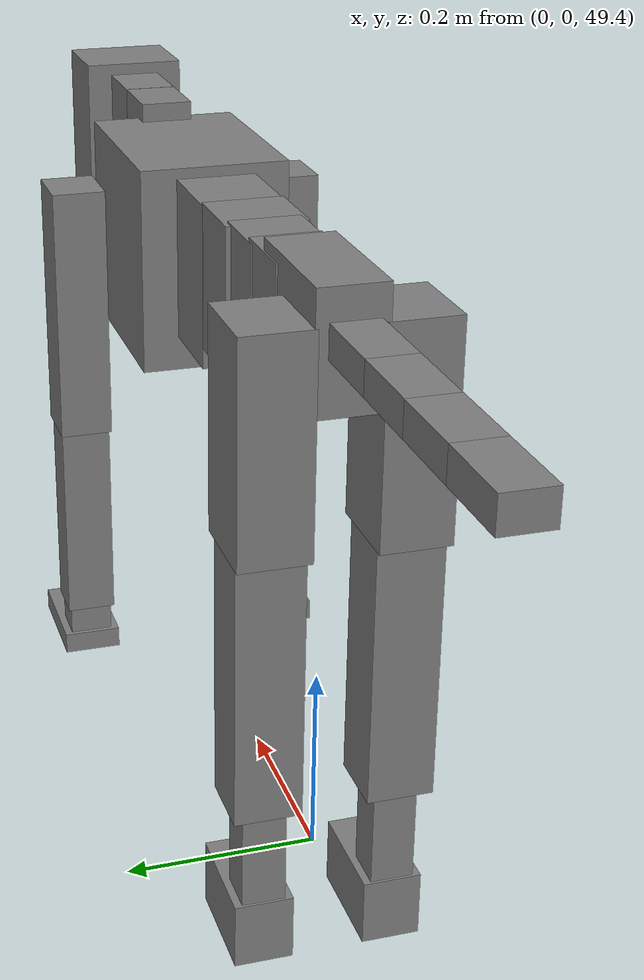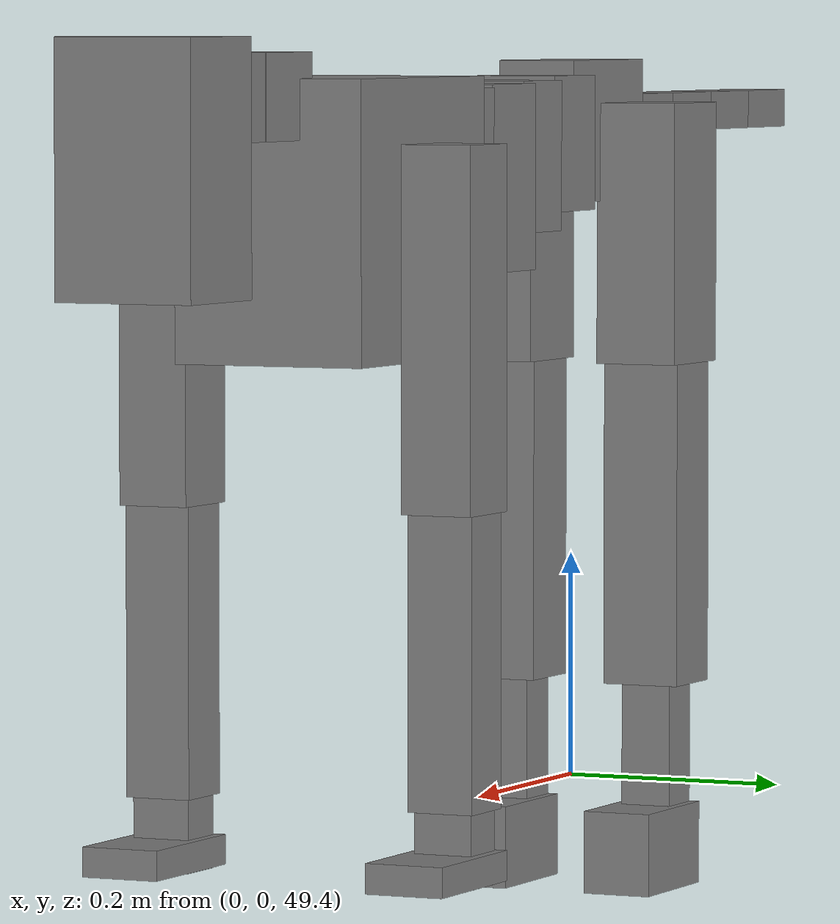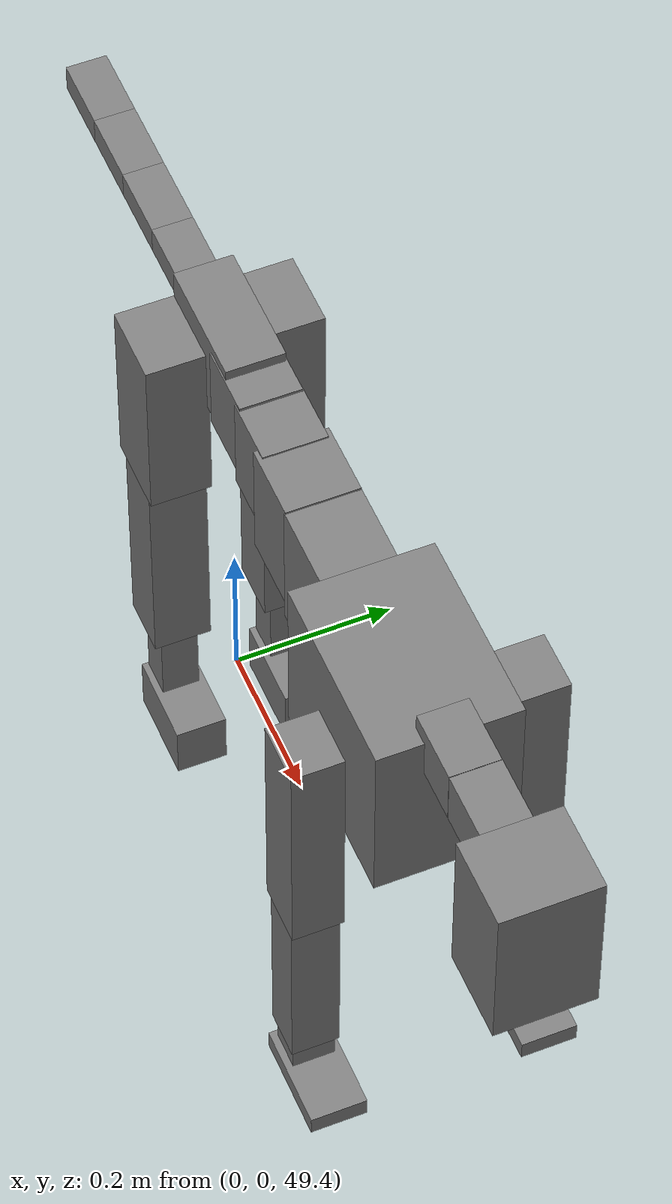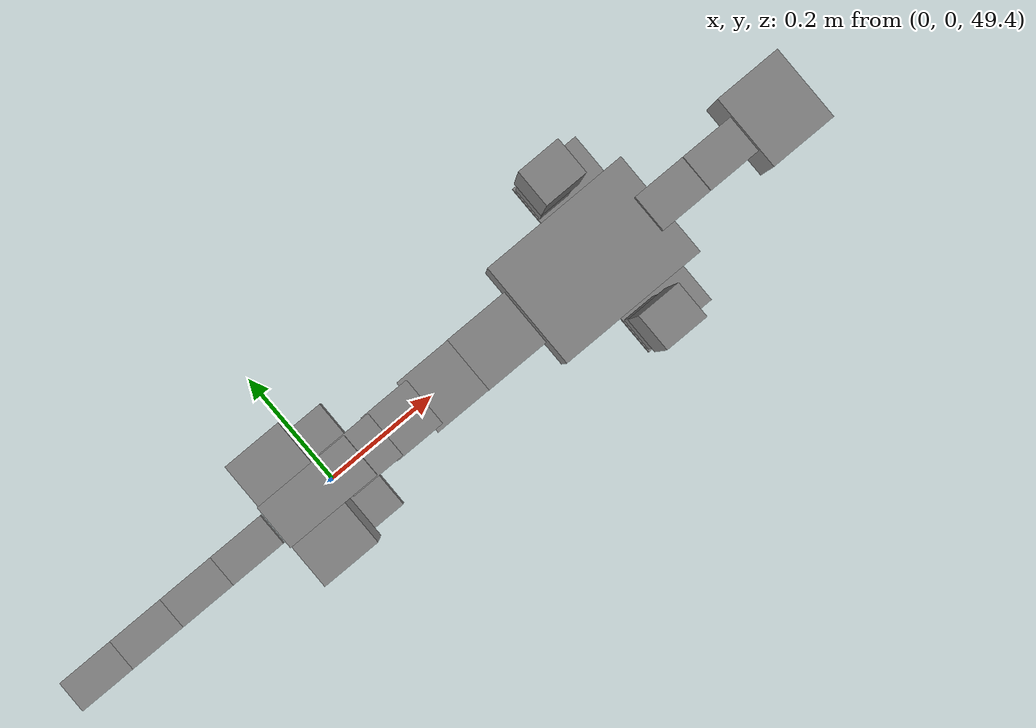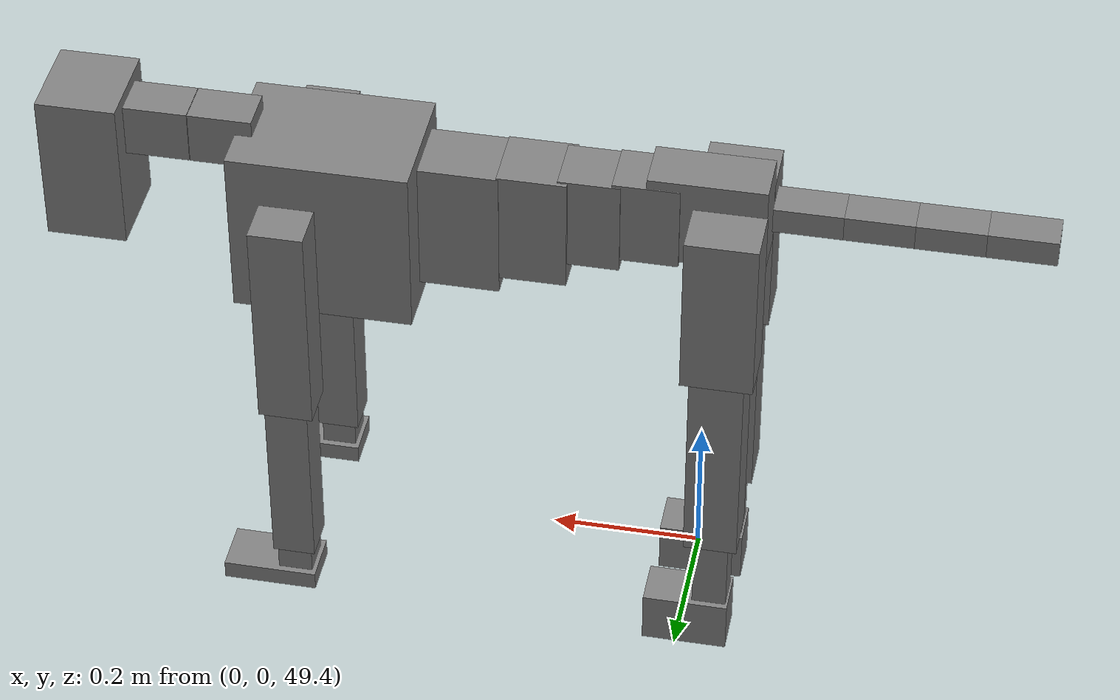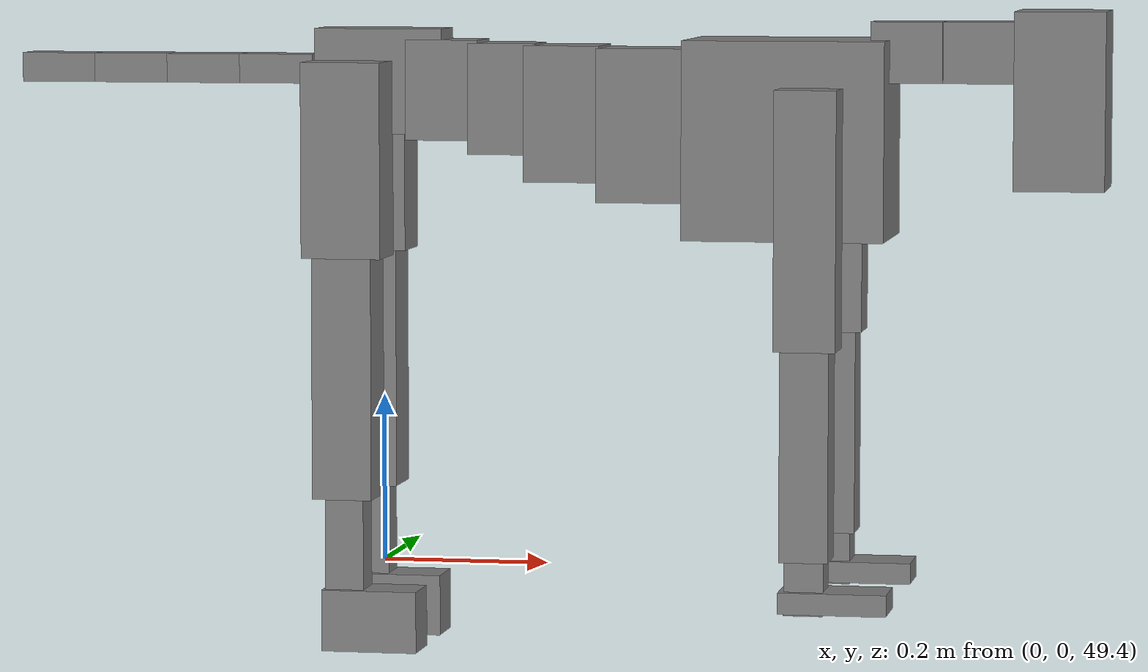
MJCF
<mujoco model="dog">

    <default>
        <joint armature="0.02" stiffness="1" damping="0.2" limited="true"/>
        <geom condim="3" friction="1 0.05 0.05" margin="0.01"/>
        <motor ctrllimited="true" ctrlrange="-1.0 1.0" forcelimited="true" gear="50"/>
    </default>

    <compiler inertiafromgeom="true" angle="radian"/>

    <option timestep="0.016" iterations="50" tolerance="1e-10" solver="Newton" jacobian="dense" cone="pyramidal"/>

    <size nconmax="20000" njmax="60000" nstack="5000000"/>
    <visual>
        <map force="0.1" zfar="30"/>
        <rgba haze="0.15 0.25 0.35 1"/>
        <quality shadowsize="2048"/>
        <global offwidth="800" offheight="800"/>
    </visual>

    <asset>
        <texture type="skybox" builtin="gradient" rgb1="0.3 0.5 0.7" rgb2="0 0 0" width="512" height="512"/>
        <texture name="texplane" type="2d" builtin="checker" rgb1=".2 .3 .4" rgb2=".1 0.15 0.2" width="512" height="512"
                 mark="cross" markrgb=".8 .8 .8"/>
        <texture name="texgeom" type="cube" builtin="flat" mark="cross" width="127" height="1278" rgb1="0.8 0.6 0.4"
                 rgb2="0.8 0.6 0.4" markrgb="1 1 1" random="0.01"/>

        <material name="matplane" reflectance="0.3" texture="texplane" texrepeat="1 1" texuniform="true"/>
        <material name="matgeom" texture="texgeom" texuniform="true" rgba="0.8 0.6 .4 1"/>
    </asset>

    <worldbody>
        <geom name="floor" pos="0 0 0" size="0 0 .25" type="plane" material="matplane" condim="3"/>

        <light directional="false" diffuse=".2 .2 .2" specular="0 0 0" pos="0 0 5" dir="0 0 -1" castshadow="false"/>
        <light mode="targetbodycom" target="torso" directional="false" diffuse=".8 .8 .8" specular="0.3 0.3 0.3"
               pos="0 0 4.0" dir="0 0 -1"/>

        <body name="root" pos="0 0 50">
            <freejoint name="root_1"/>
            <geom type="box" pos="0 0 -0.02" size="0.0774  0.0358  0.063" density="2030"/>

            <body name="spine1" pos="0.054 0 0">
                <joint name="spine1_y" axis="0 1 0" range="0 0.7" limited="true"/>
                <geom type="box" pos="0.02375 0 -0.03" size="0.04375  0.0375  0.05985" density="2030"/>

                <body name="spine2" pos="0.0612 0 0">
                    <joint name="spine2_y" axis="0 1 0" range="-0.15 0.15" limited="true"/>
                    <geom type="box" pos="0.03555  0  -0.04" size="0.04055  0.039  0.06615" density="2030"/>

                    <body name="spine3" pos="0.0730 0 0">
                        <joint name="spine3_y" axis="0 1 0" range="-0.15 0.15" limited="true"/>
                        <geom type="box" pos="0.03555  0  -0.057" size="0.04555  0.0445  0.081" density="2030"/>

                        <body name="spine4" pos="0.0780 0 0">
                            <joint name="spine4_y" axis="0 1 0" range="-0.15 0.15" limited="true"/>
                            <geom type="box" pos="0.05265  0  -0.07" size="0.05265  0.045  0.09135" density="2030"/>

                            <body name="torso" pos="0.1082 0 0">
                                <joint name="torso_y" axis="0 1 0" range="-0.15 0.15" limited="true"/>
                                <geom type="box" pos="0.11925  0  -0.085" size="0.11925  0.085  0.11745"
                                      density="2030"/>

                                <body name="neck1" pos="0.2160  0   0.0180">
                                    <joint name="neck1_y" axis="0 1 0" range="-1.2  -1" limited="true"/>
                                    <geom type="box" pos="0.0423  0  0" size="0.0423  0.03  0.036" density="2325"/>

                                    <body name="neck2" pos="0.0853  0  0">
                                        <joint name="neck2_y" axis="0 1 0" range="0.1  0" limited="true"/>
                                        <geom type="box" pos="0.0423  0  0" size="0.0423  0.03  0.036" density="2325"/>

                                        <body name="head" pos="0.0853  0  0">
                                            <joint name="head_y" axis="0 1 0" range="-0.3  -0.2" limited="true"/>
                                            <geom type="box" pos="0.0531  0  -0.055" size="0.0531  0.06  0.1044"
                                                  density="4030"/>

                                        </body>
                                    </body>
                                </body>

                                <body name="front_shoulder" pos="0.156  0   -0.0480">
                                    <joint name="front_shoulder_y" axis="0 1 0" range="-1 1.5" limited="true"/>
                                    <geom type="box" pos="0 0.13 -0.1248" size="0.0361  0.0309  0.1514" density="1158"/>
                                    <geom type="box" pos="0 -0.13 -0.1248" size="0.0361  0.0309  0.1514"
                                          density="1158"/>

                                    <body name="front_elbow" pos="0  0  -0.2495">
                                        <joint name="front_elbow_y" axis="0 1 0" range="-2 0" limited="true"/>
                                        <geom type="box" pos="0 0.13 -0.1360" size="0.0285  0.0291  0.1360"
                                              density="1081"/>
                                        <geom type="box" pos="0 -0.13 -0.1360" size="0.0285  0.0291  0.1360"
                                              density="1081"/>

                                        <body name="front_wrist" pos="0  0  -0.2720">
                                            <joint name="front_wrist_y" axis="0 1 0" range="-0.2 0" limited="true"/>
                                            <geom type="box" pos="0 0.13 -0.0247" size="0.0231  0.0256  0.0379"
                                                  density="1664"/>
                                            <geom type="box" pos="0 -0.13 -0.0247" size="0.0231  0.0256  0.0379"
                                                  density="1664"/>

                                            <body name="front_finger_end" pos="0  0  -0.0494">
                                                <joint name="front_finger_y" axis="0 1 0" range="-0.4 1"
                                                       limited="true"/>
                                                <geom type="box" pos="0.0344  0.13  0.0023"
                                                      size="0.0632  0.0344  0.0127" density="1515"/>
                                                <geom type="box" pos="0.0344  -0.13  0.0023"
                                                      size="0.0632  0.0344  0.0127" density="1515"/>

                                            </body>

                                        </body>
                                    </body>
                                </body>

                            </body>
                        </body>
                    </body>
                </body>
            </body>

            <body name="back_hip" pos="-0.03 0 -0.018">
                <joint name="back_hip_y" axis="0 1 0" range="-1.5 0.3" limited="true"/>
                <geom type="box" pos="0 0.07 -0.0935" size="0.0478  0.0375  0.1163" density="1154"/>
                <geom type="box" pos="0 -0.07 -0.0935" size="0.0478  0.0375  0.1163" density="1154"/>

                <body name="back_knee" pos="0  0  -0.1871">
                    <joint name="back_knee_y" axis="0 1 0" range="0 2.8" limited="true"/>
                    <geom type="box" pos="0 0.07 -0.1476" size="0.0359  0.0354  0.1632" density="1227"/>
                    <geom type="box" pos="0 -0.07 -0.1476" size="0.0359  0.0354  0.1632" density="1227"/>

                    <body name="back_ankle" pos="0  0  -0.2953">
                        <joint name="back_ankle_y" axis="0 1 0" range="-2.2 0" limited="true"/>
                        <geom type="box" pos="0 0.07 -0.0700" size="0.0232  0.0232  0.0812" density="1284"/>
                        <geom type="box" pos="0 -0.07 -0.0700" size="0.0232  0.0232  0.0812" density="1284"/>

                        <body name="back_toe_end" pos="0  0  -0.1399">
                            <joint name="back_toe_y" axis="0 1 0" range="-0.4 1" limited="true"/>
                            <geom type="box" pos="0.0314  0.07  -0.0218" size="0.0575  0.0314  0.0368" density="1515"/>
                            <geom type="box" pos="0.0314  -0.07  -0.0218" size="0.0575  0.0314  0.0368" density="1515"/>

                        </body>
                    </body>
                </body>
            </body>

            <body name="tail1" pos="-0.074 0 -0.006">
                <joint name="tail1_y" axis="0 1 0" range="-0.2 0.2" limited="true"/>
                <geom type="box" pos="-0.0536  0  0" size="0.045  0.025  0.0175" density="1587"/>

                <body name="tail2" pos="-0.09 0 0">
                    <joint name="tail2_y" axis="0 1 0" range="-0.2 0.2" limited="true"/>
                    <geom type="box" pos="-0.0536  0  0" size="0.045  0.025  0.0175" density="1587"/>

                    <body name="tail3" pos="-0.09 0 0">
                        <joint name="tail3_y" axis="0 1 0" range="-0.2 0.2" limited="true"/>
                        <geom type="box" pos="-0.0536  0  0" size="0.045  0.025  0.0175" density="1587"/>

                        <body name="tail4" pos="-0.09 0 0">
                            <joint name="tail4_y" axis="0 1 0" range="-0.2 0.2" limited="true"/>
                            <geom type="box" pos="-0.0536  0  0" size="0.045  0.025  0.0175" density="1587"/>

                        </body>
                    </body>
                </body>
            </body>
        </body>
    </worldbody>

    <actuator>
        <motor joint="spine1_y" forcerange="-150 150     "/>
        <motor joint="spine2_y" forcerange="-150 150     "/>
        <motor joint="spine3_y" forcerange="-150 150     "/>
        <motor joint="spine4_y" forcerange="-150 150     "/>
        <motor joint="torso_y" forcerange="-150 150     "/>
        <motor joint="neck1_y" forcerange="-100 100       "/>
        <motor joint="neck2_y" forcerange="-100 100       "/>
        <motor joint="head_y" forcerange="-150 150       "/>
        <motor joint="front_shoulder_y" forcerange="-166.01 139.88"/>
        <motor joint="front_elbow_y" forcerange="-129.97 181.85"/>
        <motor joint="front_wrist_y" forcerange="-104.46 100.59"/>
        <motor joint="front_finger_y" forcerange="-70.75 72.98"/>
        <motor joint="back_hip_y" forcerange="-344.37 355.62"/>
        <motor joint="back_knee_y" forcerange="-351.97 363.29"/>
        <motor joint="back_angle_y" forcerange="-51.41 219.04"/>
        <motor joint="back_toe_y" forcerange="-134.99 35.92"/>
        <motor joint="tail1_y" forcerange="-50 50     "/>
        <motor joint="tail2_y" forcerange="-50 50     "/>
        <motor joint="tail3_y" forcerange="-50 50     "/>
        <motor joint="tail4_y" forcerange="-50 50     "/>
    </actuator>
</mujoco>
